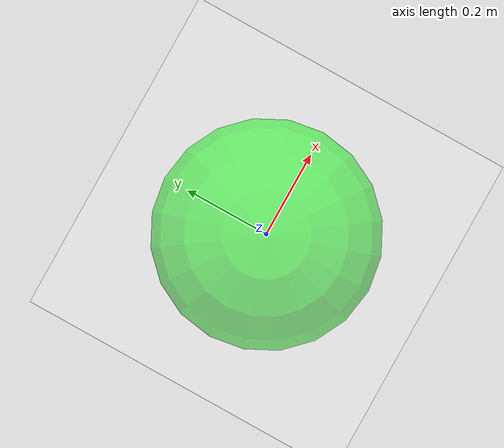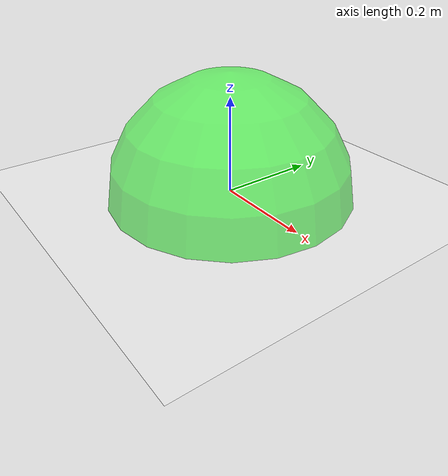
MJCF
<mujoco model="mutiagent_world">
  <compiler angle="degree" coordinate="local" inertiafromgeom="true"/>
  <option integrator="RK4" timestep="0.003" solver="PGS" iterations="1000"/>
  <default>
    <joint armature="1" damping="1" limited="true"/>
  </default>

  <visual>
    <headlight ambient=".1 .1 .1" diffuse=".6 .6 .6" specular="0.3 0.3 0.3"/>
    <map znear=".01"/>
    <quality shadowsize="16384"/>
  </visual>

  <asset>
    <texture builtin="gradient" height="100" rgb1=".4 .5 .6" rgb2="0 0 0" type="skybox" width="100" />
    <texture builtin="flat" height="1278" mark="cross" markrgb="0 0 0" name="texgeom" random="0.01" rgb1="0.8 0.6 0.4" rgb2="0.8 0.6 0.4" type="cube" width="127" />
    <texture builtin="checker" height="100" name="texplane" rgb1="0 0 0" rgb2="0.8 0.8 0.8" type="2d" width="100" />
    <texture name="MatPlane" type="2d" builtin="checker" rgb1=".5 .5 .5" rgb2=".5 .5 .5" width="300" height="300" mark="edge" markrgb="0.1 0.1 0.1" />
    <material name="MatPlane" texture="MatPlane" texrepeat="2 2" texuniform="true" reflectance=".2" />
    <material name="geom" texture="texgeom" texuniform="true" />
  </asset>

  <worldbody>
    <light cutoff="100" diffuse="1 1 1" dir="-0 0 -1.3" directional="true" exponent="1" pos="0 0 1.3" specular=".1 .1 .1"/>
    <geom contype="1" conaffinity="1" friction="1 .1 .1" condim="3" material="MatPlane" name="floor" pos="0 0 0" rgba="1 1 1 1" size="20 20 0.125" type="plane"/>
    <body name="goal" pos="0 0 0" euler="0 0 0">
      <geom pos="0 0 0" size="0.25" type="sphere" rgba="0 1 0 0.5"/>
    </body>
  </worldbody>
</mujoco>
